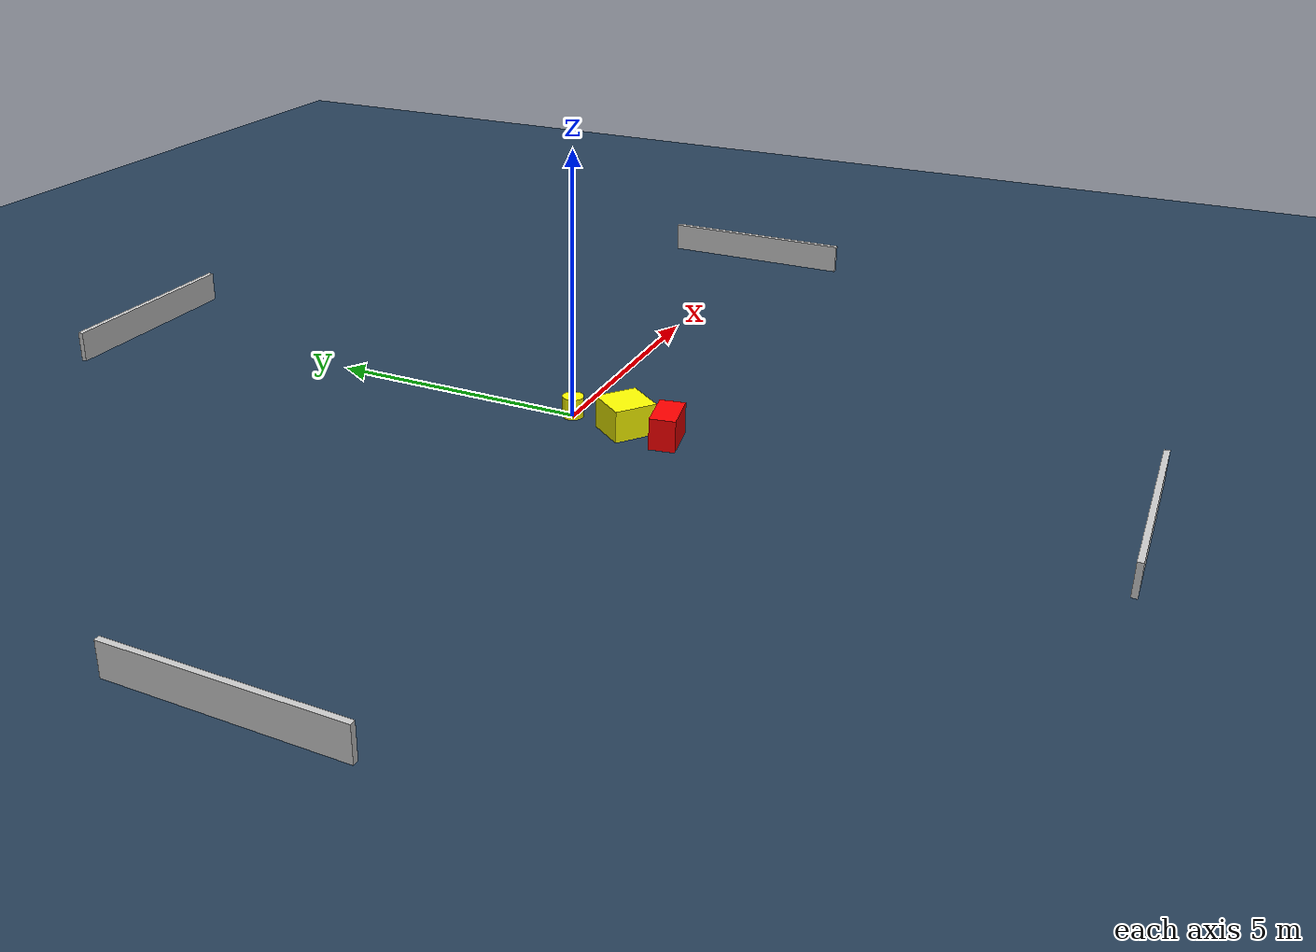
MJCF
<?xml version="1.0" ?>
<mujoco model="generated_environment">
  <option timestep="0.01" integrator="RK4" cone="elliptic"/>
  <default>
    <geom density="1"/>
  </default>
  <asset>
    <texture builtin="gradient" height="3072" name="skybox" rgb1="0.3 0.5 0.7" rgb2="0 0 0" type="skybox" width="512"/>
    <texture builtin="checker" height="300" name="groundplane" rgb1="0.2 0.3 0.4" rgb2="0.1 0.2 0.3" type="2d" width="300"/>
    <material name="groundplane" reflectance="0.2" texrepeat="5 5" texture="groundplane"/>
  </asset>
  <worldbody>
    <light dir="0 0 -1" directional="true" pos="0 0 1.5"/>
    <geom condim="3" friction="0.5 0.005 0.001" material="groundplane" name="floor" pos="0 0 0" size="0 0 0.05" type="plane"/>
    <body name="walls">
      <geom name="wall_1" condim="4" pos="-10.0 0.0 0.3" rgba="0.800000011920929 0.800000011920929 0.800000011920929 1.0" size="0.05 2.0 0.3" type="box"/>
      <geom name="wall_2" condim="4" pos="10.0 0.0 0.3" rgba="0.800000011920929 0.800000011920929 0.800000011920929 1.0" size="0.05 2.0 0.3" type="box"/>
      <geom name="wall_3" condim="4" pos="0.0 -10.0 0.3" rgba="0.800000011920929 0.800000011920929 0.800000011920929 1.0" size="2.0 0.05 0.3" type="box"/>
      <geom name="wall_4" condim="4" pos="0.0 10.0 0.3" rgba="0.800000011920929 0.800000011920929 0.800000011920929 1.0" size="2.0 0.05 0.3" type="box"/>
    </body>
    <body name="robot">
      <joint name="joint_x" type="slide" pos="0 0 0" axis="1 0 0"/>
      <joint name="joint_y" type="slide" pos="0 0 0" axis="0 1 0"/>
      <geom name="robot" type="cylinder" pos="0.0 0.0 0.2" size="0.2 0.2 0.0" mass="5.0" friction="1.0 0.005 0.0001" condim="4" rgba="1.0 1.0 0.0 1.0"/>
    </body>
    <body name="obstacle_1_movable">
      <geom name="obstacle_1_movable" condim="4" pos="-0.13148396205002705 -1.11474294654036 0.3" euler="0 0 142.13468438427665" friction="0.0 0.005 0.001" rgba="1.0 1.0 0.0 1.0" size="0.40574006610112623 0.39669719912115076 0.3" type="box" mass="0.1"/>
      <joint type="free"/>
    </body>
    <body name="obstacle_2_static">
      <geom name="obstacle_2_static" condim="4" pos="-0.2233201203327583 -1.964213171181917 0.3" euler="0 0 189.7920230840563" friction="0.0 0.005 0.001" rgba="1.0 0.0 0.0 1.0" size="0.4194154377710831 0.23891167636016475 0.3" type="box"/>
    </body>
  </worldbody>
  <actuator>
    <motor name="actuator_x" joint="joint_x" gear="1" ctrlrange="-1 1"/>
    <motor name="actuator_y" joint="joint_y" gear="1" ctrlrange="-1 1"/>
  </actuator>
</mujoco>
